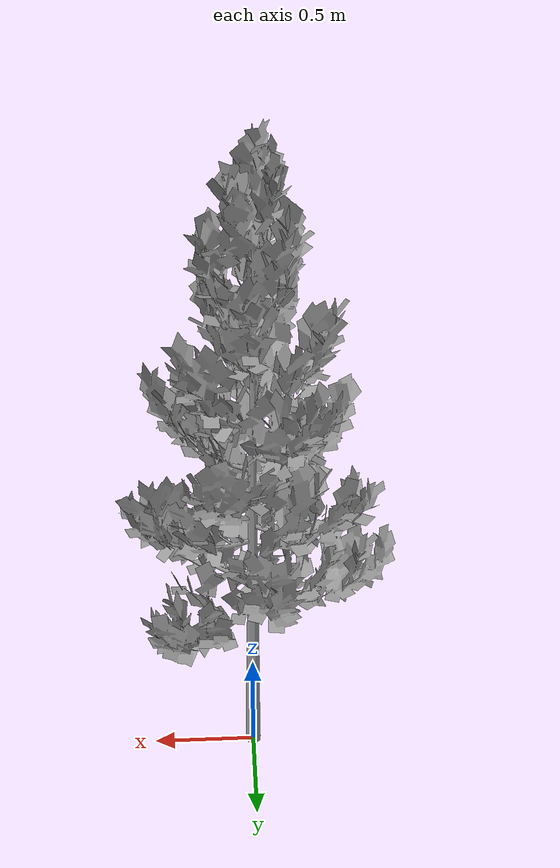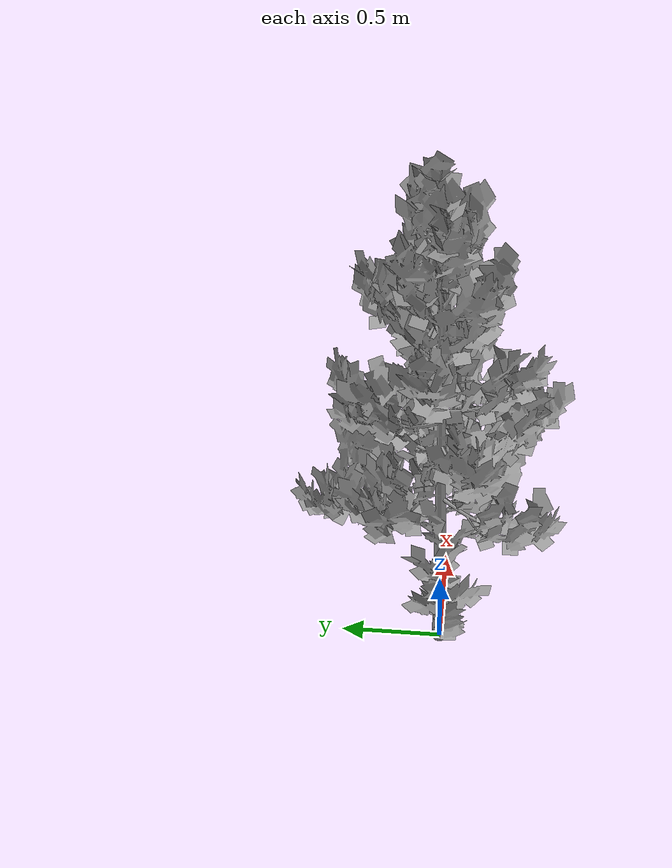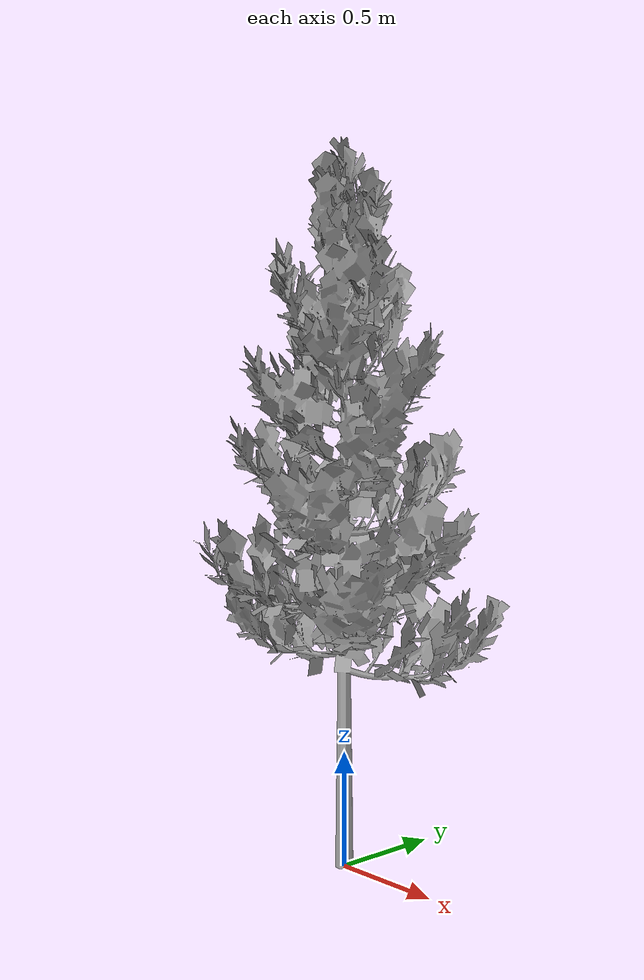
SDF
<?xml version="1.0" ?>
<sdf version="1.6">
  <model name="AIGC2_tree">
    <static>true</static>
    <link name="link">
      <pose>0 0 0 1.5707 0 0</pose>
      <collision name="collision">
        <geometry>
          <mesh>
		    <scale>4.5 6.0 4.5</scale>
            <uri>model://AIGC2_tree/meshes/Tree4.dae</uri>
          </mesh>
        </geometry>
      </collision>
      <visual name="visual">
        <!-- give it some transparency so the transparency in the PNGs is used -->
        <transparency>0.001</transparency>
        <geometry>
          <mesh>
		    <scale>4.5 6.0 4.5</scale>
            <uri>model://AIGC2_tree/meshes/Tree4.dae</uri>
          </mesh>
        </geometry>
      </visual>
    </link>
  </model>
</sdf>
